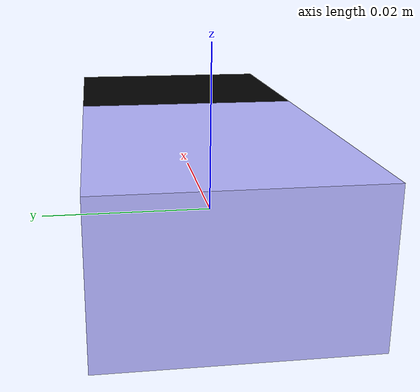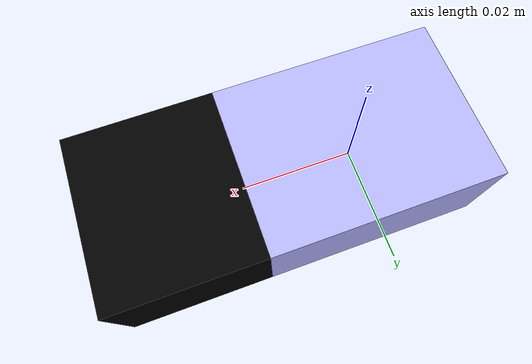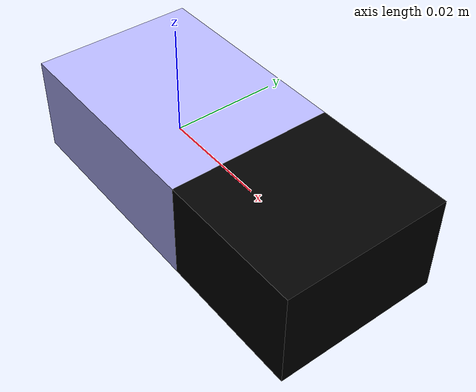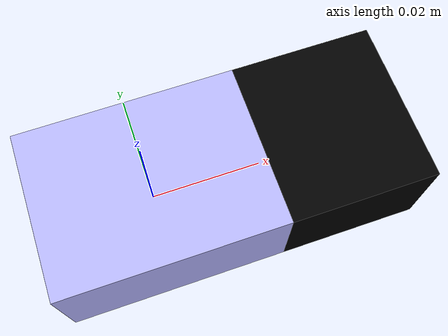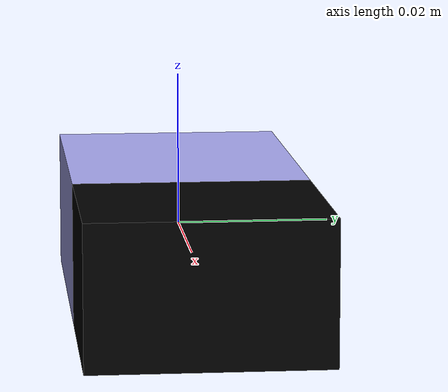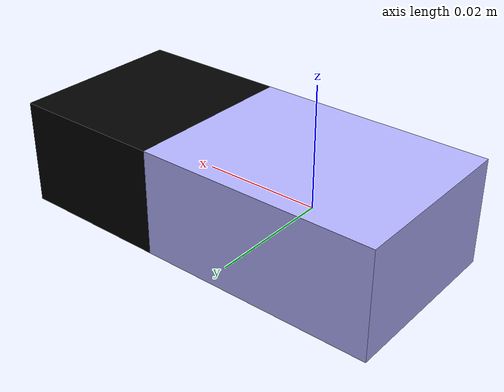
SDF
<?xml version='1.0'?>
<sdf version='1.6'>
  <model name='perfume'>
    <link name='link'>
      <inertial>
        <mass>0.5</mass>
        <inertia>
          <ixx>0.166667</ixx>
          <ixy>0</ixy>
          <ixz>0</ixz>
          <iyy>0.166667</iyy>
          <iyz>0</iyz>
          <izz>0.166667</izz>
        </inertia>
        <pose frame=''>0 0 0 0 -0 0</pose>
      </inertial>
      <self_collide>0</self_collide>
      <enable_wind>0</enable_wind>
      <kinematic>0</kinematic>
      <pose frame=''>0. 0. 0. 0 -0 0</pose>
      <gravity>1</gravity>
      <visual name='visual'>
        <geometry>
          <box>
            <size>0.04 0.03 0.018</size>
          </box>
        </geometry>
        <material>
          <shader type='vertex'>
            <normal_map>__default__</normal_map>
          </shader>
          <ambient>0.3 0.3 1 1</ambient>
          <diffuse>0.7 0.7 1 1</diffuse>
          <specular>0 0 0.51 1</specular>
          <emissive>0 0 0 1</emissive>
        </material>
        <pose frame=''>0 0 0 0 -0 0</pose>
        <transparency>0</transparency>
        <cast_shadows>1</cast_shadows>
      </visual>
      <collision name='collision'>
        <laser_retro>0</laser_retro>
        <max_contacts>10</max_contacts>
        <pose frame=''>0 0 0 0 -0 0</pose>
        <geometry>
          <box>
            <size>0.04 0.03 0.018</size>
          </box>
        </geometry>
        <surface>
          <friction>
            <ode>
              <mu>1</mu>
              <mu2>1</mu2>
              <fdir1>0 0 0</fdir1>
              <slip1>0</slip1>
              <slip2>0</slip2>
            </ode>
            <torsional>
              <coefficient>1</coefficient>
              <patch_radius>0</patch_radius>
              <surface_radius>0</surface_radius>
              <use_patch_radius>1</use_patch_radius>
              <ode>
                <slip>0</slip>
              </ode>
            </torsional>
          </friction>
          <bounce>
            <restitution_coefficient>0</restitution_coefficient>
            <threshold>1e+06</threshold>
          </bounce>
          <contact>
            <collide_without_contact>0</collide_without_contact>
            <collide_without_contact_bitmask>1</collide_without_contact_bitmask>
            <collide_bitmask>1</collide_bitmask>
            <ode>
              <soft_cfm>0</soft_cfm>
              <soft_erp>0.2</soft_erp>
              <kp>1e+13</kp>
              <kd>1</kd>
              <max_vel>0.01</max_vel>
              <min_depth>0</min_depth>
            </ode>
            <bullet>
              <split_impulse>1</split_impulse>
              <split_impulse_penetration_threshold>-0.01</split_impulse_penetration_threshold>
              <soft_cfm>0</soft_cfm>
              <soft_erp>0.2</soft_erp>
              <kp>1e+13</kp>
              <kd>1</kd>
            </bullet>
          </contact>
        </surface>
      </collision>
    </link>
    <link name='link2'>
      <inertial>
        <mass>0.5</mass>
        <inertia>
          <ixx>0.170118</ixx>
          <ixy>0</ixy>
          <ixz>0</ixz>
          <iyy>0.173675</iyy>
          <iyz>0</iyz>
          <izz>0.173675</izz>
        </inertia>
        <pose frame=''>0 0 0 0 -0 0</pose>
      </inertial>
      <self_collide>0</self_collide>
      <enable_wind>0</enable_wind>
      <kinematic>0</kinematic>
      <pose frame=''>0.033 0.0 0.0 0 -0 0</pose>
      <gravity>1</gravity>
      <visual name='visual'>
        <geometry>
          <box>
            <size>0.026 0.03 0.018</size>
          </box>
        </geometry>
        <material>
          <shader type='vertex'>
            <normal_map>__default__</normal_map>
          </shader>
          <ambient>0 0 0 1</ambient>
          <diffuse>0 0 0 1</diffuse>
          <specular>0 0 0 1</specular>
          <emissive>0 0 0 1</emissive>
        </material>
        <pose frame=''>0 0 0 0 -0 0</pose>
        <transparency>0</transparency>
        <cast_shadows>1</cast_shadows>
      </visual>
      <collision name='collision'>
        <laser_retro>0</laser_retro>
        <max_contacts>10</max_contacts>
        <pose frame=''>0 0 0 0 -0 0</pose>
        <geometry>
          <box>
            <size>0.026 0.03 0.018</size>
          </box>
        </geometry>
        <surface>
          <friction>
            <ode>
              <mu>1</mu>
              <mu2>1</mu2>
              <fdir1>0 0 0</fdir1>
              <slip1>0</slip1>
              <slip2>0</slip2>
            </ode>
            <torsional>
              <coefficient>1</coefficient>
              <patch_radius>0</patch_radius>
              <surface_radius>0</surface_radius>
              <use_patch_radius>1</use_patch_radius>
              <ode>
                <slip>0</slip>
              </ode>
            </torsional>
          </friction>
          <bounce>
            <restitution_coefficient>0</restitution_coefficient>
            <threshold>1e+06</threshold>
          </bounce>
          <contact>
            <collide_without_contact>0</collide_without_contact>
            <collide_without_contact_bitmask>1</collide_without_contact_bitmask>
            <collide_bitmask>1</collide_bitmask>
            <ode>
              <soft_cfm>0</soft_cfm>
              <soft_erp>0.2</soft_erp>
              <kp>1e+13</kp>
              <kd>1</kd>
              <max_vel>0.01</max_vel>
              <min_depth>0</min_depth>
            </ode>
            <bullet>
              <split_impulse>1</split_impulse>
              <split_impulse_penetration_threshold>-0.01</split_impulse_penetration_threshold>
              <soft_cfm>0</soft_cfm>
              <soft_erp>0.2</soft_erp>
              <kp>1e+13</kp>
              <kd>1</kd>
            </bullet>
          </contact>
        </surface>
      </collision>
    </link>
    <joint name='link_JOINT_0' type='fixed'>
      <parent>link</parent>
      <child>link2</child>
      <pose frame=''>0 0 0 0 -0 0</pose>
      <physics>
        <ode>
          <limit>
            <cfm>0</cfm>
            <erp>0.2</erp>
          </limit>
          <suspension>
            <cfm>0</cfm>
            <erp>0.2</erp>
          </suspension>
        </ode>
      </physics>
    </joint>
    <static>0</static>
    <allow_auto_disable>1</allow_auto_disable>
  </model>
</sdf>
